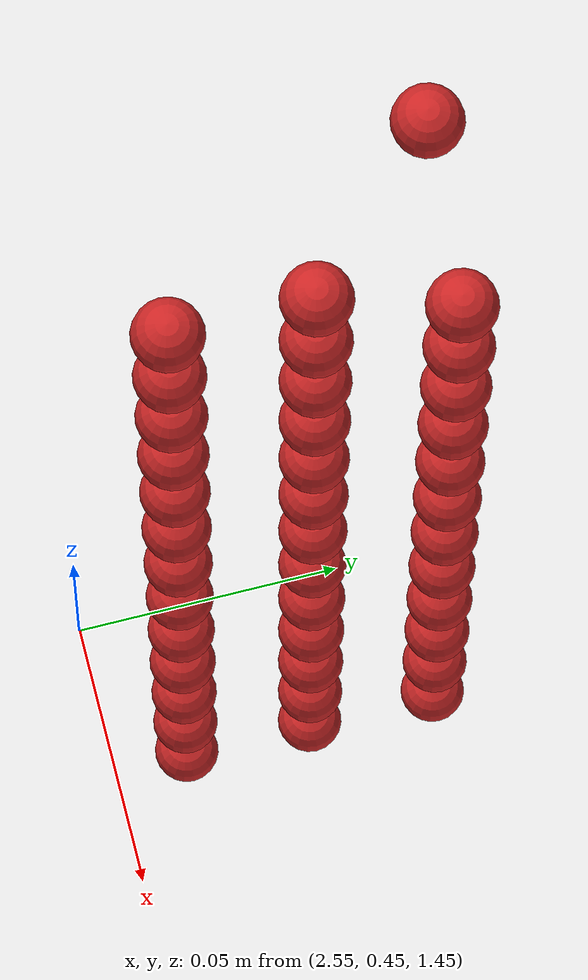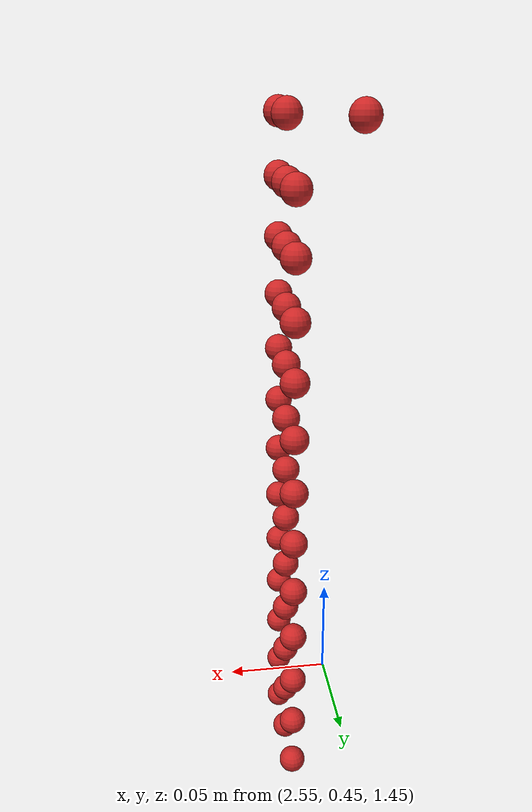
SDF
<sdf version="1.4">
 <world name="default">
  <model name="ground_plane">
   <static>1</static>
   <link name="link">
    <collision name="collision">
     <geometry><plane><normal>0 0 1</normal><size>100 100</size></plane></geometry>
     <surface><friction><ode><mu>100</mu><mu2>50</mu2></ode></friction></surface>
    </collision>
    <visual name="visual">
     <cast_shadows>0</cast_shadows>
     <geometry><plane><normal>0 0 1</normal><size>100 100</size></plane></geometry>
     <material>
      <script><uri>file://media/materials/scripts/gazebo.material</uri><name>Gazebo/Grey</name></script>
     </material>
    </visual>
    <velocity_decay><linear>0</linear><angular>0</angular></velocity_decay>
   </link>
  </model>
  <model name="sphere1">
   <pose>1.288140 0.232149 0.722288 0 0 0</pose>
   <link name="link">
    <pose>1.288140 0.232149 0.722288 0 0 0</pose>
    <inertial>
     <mass>0.001</mass>
     <inertia>
      <ixx>0.004</ixx>
      <ixy>0.000000</ixy>
      <ixz>0.000000</ixz>
      <iyy>0.004</iyy>
      <iyz>0.000000</iyz>
      <izz>0.004</izz>
     </inertia>
    </inertial>
    <collision name="collision">
     <surface>
      <contact><ode><kp>10000000000.000000</kp><kd>1</kd></ode></contact>
      <friction><ode><mu>0.01</mu><mu2>0.01</mu2></ode></friction>
     </surface>
     <geometry><sphere><radius>0.006</radius></sphere></geometry>
    </collision>
    <visual name="visual">
     <geometry><sphere><radius>0.006</radius></sphere></geometry>
     <material>
      <script><uri>file://media/materials/scripts/gazebo.material</uri><name>Gazebo/Red</name></script>
     </material>
    </visual>
   </link>
  </model>
  <model name="sphere4">
   <pose>1.288140 0.244149 0.722288 0 0 0</pose>
   <link name="link">
    <pose>1.288140 0.244149 0.722288 0 0 0</pose>
    <inertial>
     <mass>0.001</mass>
     <inertia>
      <ixx>0.004</ixx>
      <ixy>0.000000</ixy>
      <ixz>0.000000</ixz>
      <iyy>0.004</iyy>
      <iyz>0.000000</iyz>
      <izz>0.004</izz>
     </inertia>
    </inertial>
    <collision name="collision">
     <surface>
      <contact><ode><kp>10000000000.000000</kp><kd>1</kd></ode></contact>
      <friction><ode><mu>0.01</mu><mu2>0.01</mu2></ode></friction>
     </surface>
     <geometry><sphere><radius>0.006</radius></sphere></geometry>
    </collision>
    <visual name="visual">
     <geometry><sphere><radius>0.006</radius></sphere></geometry>
     <material>
      <script><uri>file://media/materials/scripts/gazebo.material</uri><name>Gazebo/Red</name></script>
     </material>
    </visual>
   </link>
  </model>
  <model name="sphere7">
   <pose>1.288140 0.256149 0.722288 0 0 0</pose>
   <link name="link">
    <pose>1.288140 0.256149 0.722288 0 0 0</pose>
    <inertial>
     <mass>0.001</mass>
     <inertia>
      <ixx>0.004</ixx>
      <ixy>0.000000</ixy>
      <ixz>0.000000</ixz>
      <iyy>0.004</iyy>
      <iyz>0.000000</iyz>
      <izz>0.004</izz>
     </inertia>
    </inertial>
    <collision name="collision">
     <surface>
      <contact><ode><kp>10000000000.000000</kp><kd>1</kd></ode></contact>
      <friction><ode><mu>0.01</mu><mu2>0.01</mu2></ode></friction>
     </surface>
     <geometry><sphere><radius>0.006</radius></sphere></geometry>
    </collision>
    <visual name="visual">
     <geometry><sphere><radius>0.006</radius></sphere></geometry>
     <material>
      <script><uri>file://media/materials/scripts/gazebo.material</uri><name>Gazebo/Red</name></script>
     </material>
    </visual>
   </link>
  </model>
  <model name="sphere10">
   <pose>1.288140 0.232149 0.734288 0 0 0</pose>
   <link name="link">
    <pose>1.288140 0.232149 0.734288 0 0 0</pose>
    <inertial>
     <mass>0.001</mass>
     <inertia>
      <ixx>0.004</ixx>
      <ixy>0.000000</ixy>
      <ixz>0.000000</ixz>
      <iyy>0.004</iyy>
      <iyz>0.000000</iyz>
      <izz>0.004</izz>
     </inertia>
    </inertial>
    <collision name="collision">
     <surface>
      <contact><ode><kp>10000000000.000000</kp><kd>1</kd></ode></contact>
      <friction><ode><mu>0.01</mu><mu2>0.01</mu2></ode></friction>
     </surface>
     <geometry><sphere><radius>0.006</radius></sphere></geometry>
    </collision>
    <visual name="visual">
     <geometry><sphere><radius>0.006</radius></sphere></geometry>
     <material>
      <script><uri>file://media/materials/scripts/gazebo.material</uri><name>Gazebo/Red</name></script>
     </material>
    </visual>
   </link>
  </model>
  <model name="sphere13">
   <pose>1.288140 0.244149 0.734288 0 0 0</pose>
   <link name="link">
    <pose>1.288140 0.244149 0.734288 0 0 0</pose>
    <inertial>
     <mass>0.001</mass>
     <inertia>
      <ixx>0.004</ixx>
      <ixy>0.000000</ixy>
      <ixz>0.000000</ixz>
      <iyy>0.004</iyy>
      <iyz>0.000000</iyz>
      <izz>0.004</izz>
     </inertia>
    </inertial>
    <collision name="collision">
     <surface>
      <contact><ode><kp>10000000000.000000</kp><kd>1</kd></ode></contact>
      <friction><ode><mu>0.01</mu><mu2>0.01</mu2></ode></friction>
     </surface>
     <geometry><sphere><radius>0.006</radius></sphere></geometry>
    </collision>
    <visual name="visual">
     <geometry><sphere><radius>0.006</radius></sphere></geometry>
     <material>
      <script><uri>file://media/materials/scripts/gazebo.material</uri><name>Gazebo/Red</name></script>
     </material>
    </visual>
   </link>
  </model>
  <model name="sphere16">
   <pose>1.288140 0.256149 0.734288 0 0 0</pose>
   <link name="link">
    <pose>1.288140 0.256149 0.734288 0 0 0</pose>
    <inertial>
     <mass>0.001</mass>
     <inertia>
      <ixx>0.004</ixx>
      <ixy>0.000000</ixy>
      <ixz>0.000000</ixz>
      <iyy>0.004</iyy>
      <iyz>0.000000</iyz>
      <izz>0.004</izz>
     </inertia>
    </inertial>
    <collision name="collision">
     <surface>
      <contact><ode><kp>10000000000.000000</kp><kd>1</kd></ode></contact>
      <friction><ode><mu>0.01</mu><mu2>0.01</mu2></ode></friction>
     </surface>
     <geometry><sphere><radius>0.006</radius></sphere></geometry>
    </collision>
    <visual name="visual">
     <geometry><sphere><radius>0.006</radius></sphere></geometry>
     <material>
      <script><uri>file://media/materials/scripts/gazebo.material</uri><name>Gazebo/Red</name></script>
     </material>
    </visual>
   </link>
  </model>
  <model name="sphere19">
   <pose>1.288140 0.232149 0.746288 0 0 0</pose>
   <link name="link">
    <pose>1.288140 0.232149 0.746288 0 0 0</pose>
    <inertial>
     <mass>0.001</mass>
     <inertia>
      <ixx>0.004</ixx>
      <ixy>0.000000</ixy>
      <ixz>0.000000</ixz>
      <iyy>0.004</iyy>
      <iyz>0.000000</iyz>
      <izz>0.004</izz>
     </inertia>
    </inertial>
    <collision name="collision">
     <surface>
      <contact><ode><kp>10000000000.000000</kp><kd>1</kd></ode></contact>
      <friction><ode><mu>0.01</mu><mu2>0.01</mu2></ode></friction>
     </surface>
     <geometry><sphere><radius>0.006</radius></sphere></geometry>
    </collision>
    <visual name="visual">
     <geometry><sphere><radius>0.006</radius></sphere></geometry>
     <material>
      <script><uri>file://media/materials/scripts/gazebo.material</uri><name>Gazebo/Red</name></script>
     </material>
    </visual>
   </link>
  </model>
  <model name="sphere22">
   <pose>1.288140 0.244149 0.746288 0 0 0</pose>
   <link name="link">
    <pose>1.288140 0.244149 0.746288 0 0 0</pose>
    <inertial>
     <mass>0.001</mass>
     <inertia>
      <ixx>0.004</ixx>
      <ixy>0.000000</ixy>
      <ixz>0.000000</ixz>
      <iyy>0.004</iyy>
      <iyz>0.000000</iyz>
      <izz>0.004</izz>
     </inertia>
    </inertial>
    <collision name="collision">
     <surface>
      <contact><ode><kp>10000000000.000000</kp><kd>1</kd></ode></contact>
      <friction><ode><mu>0.01</mu><mu2>0.01</mu2></ode></friction>
     </surface>
     <geometry><sphere><radius>0.006</radius></sphere></geometry>
    </collision>
    <visual name="visual">
     <geometry><sphere><radius>0.006</radius></sphere></geometry>
     <material>
      <script><uri>file://media/materials/scripts/gazebo.material</uri><name>Gazebo/Red</name></script>
     </material>
    </visual>
   </link>
  </model>
  <model name="sphere25">
   <pose>1.288140 0.256149 0.746288 0 0 0</pose>
   <link name="link">
    <pose>1.288140 0.256149 0.746288 0 0 0</pose>
    <inertial>
     <mass>0.001</mass>
     <inertia>
      <ixx>0.004</ixx>
      <ixy>0.000000</ixy>
      <ixz>0.000000</ixz>
      <iyy>0.004</iyy>
      <iyz>0.000000</iyz>
      <izz>0.004</izz>
     </inertia>
    </inertial>
    <collision name="collision">
     <surface>
      <contact><ode><kp>10000000000.000000</kp><kd>1</kd></ode></contact>
      <friction><ode><mu>0.01</mu><mu2>0.01</mu2></ode></friction>
     </surface>
     <geometry><sphere><radius>0.006</radius></sphere></geometry>
    </collision>
    <visual name="visual">
     <geometry><sphere><radius>0.006</radius></sphere></geometry>
     <material>
      <script><uri>file://media/materials/scripts/gazebo.material</uri><name>Gazebo/Red</name></script>
     </material>
    </visual>
   </link>
  </model>
  <model name="sphere28">
   <pose>1.288140 0.232149 0.758288 0 0 0</pose>
   <link name="link">
    <pose>1.288140 0.232149 0.758288 0 0 0</pose>
    <inertial>
     <mass>0.001</mass>
     <inertia>
      <ixx>0.004</ixx>
      <ixy>0.000000</ixy>
      <ixz>0.000000</ixz>
      <iyy>0.004</iyy>
      <iyz>0.000000</iyz>
      <izz>0.004</izz>
     </inertia>
    </inertial>
    <collision name="collision">
     <surface>
      <contact><ode><kp>10000000000.000000</kp><kd>1</kd></ode></contact>
      <friction><ode><mu>0.01</mu><mu2>0.01</mu2></ode></friction>
     </surface>
     <geometry><sphere><radius>0.006</radius></sphere></geometry>
    </collision>
    <visual name="visual">
     <geometry><sphere><radius>0.006</radius></sphere></geometry>
     <material>
      <script><uri>file://media/materials/scripts/gazebo.material</uri><name>Gazebo/Red</name></script>
     </material>
    </visual>
   </link>
  </model>
  <model name="sphere31">
   <pose>1.288140 0.244149 0.758288 0 0 0</pose>
   <link name="link">
    <pose>1.288140 0.244149 0.758288 0 0 0</pose>
    <inertial>
     <mass>0.001</mass>
     <inertia>
      <ixx>0.004</ixx>
      <ixy>0.000000</ixy>
      <ixz>0.000000</ixz>
      <iyy>0.004</iyy>
      <iyz>0.000000</iyz>
      <izz>0.004</izz>
     </inertia>
    </inertial>
    <collision name="collision">
     <surface>
      <contact><ode><kp>10000000000.000000</kp><kd>1</kd></ode></contact>
      <friction><ode><mu>0.01</mu><mu2>0.01</mu2></ode></friction>
     </surface>
     <geometry><sphere><radius>0.006</radius></sphere></geometry>
    </collision>
    <visual name="visual">
     <geometry><sphere><radius>0.006</radius></sphere></geometry>
     <material>
      <script><uri>file://media/materials/scripts/gazebo.material</uri><name>Gazebo/Red</name></script>
     </material>
    </visual>
   </link>
  </model>
  <model name="sphere34">
   <pose>1.288140 0.256149 0.758288 0 0 0</pose>
   <link name="link">
    <pose>1.288140 0.256149 0.758288 0 0 0</pose>
    <inertial>
     <mass>0.001</mass>
     <inertia>
      <ixx>0.004</ixx>
      <ixy>0.000000</ixy>
      <ixz>0.000000</ixz>
      <iyy>0.004</iyy>
      <iyz>0.000000</iyz>
      <izz>0.004</izz>
     </inertia>
    </inertial>
    <collision name="collision">
     <surface>
      <contact><ode><kp>10000000000.000000</kp><kd>1</kd></ode></contact>
      <friction><ode><mu>0.01</mu><mu2>0.01</mu2></ode></friction>
     </surface>
     <geometry><sphere><radius>0.006</radius></sphere></geometry>
    </collision>
    <visual name="visual">
     <geometry><sphere><radius>0.006</radius></sphere></geometry>
     <material>
      <script><uri>file://media/materials/scripts/gazebo.material</uri><name>Gazebo/Red</name></script>
     </material>
    </visual>
   </link>
  </model>
  <model name="sphere37">
   <pose>1.288140 0.232149 0.770288 0 0 0</pose>
   <link name="link">
    <pose>1.288140 0.232149 0.770288 0 0 0</pose>
    <inertial>
     <mass>0.001</mass>
     <inertia>
      <ixx>0.004</ixx>
      <ixy>0.000000</ixy>
      <ixz>0.000000</ixz>
      <iyy>0.004</iyy>
      <iyz>0.000000</iyz>
      <izz>0.004</izz>
     </inertia>
    </inertial>
    <collision name="collision">
     <surface>
      <contact><ode><kp>10000000000.000000</kp><kd>1</kd></ode></contact>
      <friction><ode><mu>0.01</mu><mu2>0.01</mu2></ode></friction>
     </surface>
     <geometry><sphere><radius>0.006</radius></sphere></geometry>
    </collision>
    <visual name="visual">
     <geometry><sphere><radius>0.006</radius></sphere></geometry>
     <material>
      <script><uri>file://media/materials/scripts/gazebo.material</uri><name>Gazebo/Red</name></script>
     </material>
    </visual>
   </link>
  </model>
  <model name="sphere40">
   <pose>1.288140 0.244149 0.770288 0 0 0</pose>
   <link name="link">
    <pose>1.288140 0.244149 0.770288 0 0 0</pose>
    <inertial>
     <mass>0.001</mass>
     <inertia>
      <ixx>0.004</ixx>
      <ixy>0.000000</ixy>
      <ixz>0.000000</ixz>
      <iyy>0.004</iyy>
      <iyz>0.000000</iyz>
      <izz>0.004</izz>
     </inertia>
    </inertial>
    <collision name="collision">
     <surface>
      <contact><ode><kp>10000000000.000000</kp><kd>1</kd></ode></contact>
      <friction><ode><mu>0.01</mu><mu2>0.01</mu2></ode></friction>
     </surface>
     <geometry><sphere><radius>0.006</radius></sphere></geometry>
    </collision>
    <visual name="visual">
     <geometry><sphere><radius>0.006</radius></sphere></geometry>
     <material>
      <script><uri>file://media/materials/scripts/gazebo.material</uri><name>Gazebo/Red</name></script>
     </material>
    </visual>
   </link>
  </model>
  <model name="sphere43">
   <pose>1.288140 0.256149 0.770288 0 0 0</pose>
   <link name="link">
    <pose>1.288140 0.256149 0.770288 0 0 0</pose>
    <inertial>
     <mass>0.001</mass>
     <inertia>
      <ixx>0.004</ixx>
      <ixy>0.000000</ixy>
      <ixz>0.000000</ixz>
      <iyy>0.004</iyy>
      <iyz>0.000000</iyz>
      <izz>0.004</izz>
     </inertia>
    </inertial>
    <collision name="collision">
     <surface>
      <contact><ode><kp>10000000000.000000</kp><kd>1</kd></ode></contact>
      <friction><ode><mu>0.01</mu><mu2>0.01</mu2></ode></friction>
     </surface>
     <geometry><sphere><radius>0.006</radius></sphere></geometry>
    </collision>
    <visual name="visual">
     <geometry><sphere><radius>0.006</radius></sphere></geometry>
     <material>
      <script><uri>file://media/materials/scripts/gazebo.material</uri><name>Gazebo/Red</name></script>
     </material>
    </visual>
   </link>
  </model>
  <model name="sphere46">
   <pose>1.288140 0.232149 0.782288 0 0 0</pose>
   <link name="link">
    <pose>1.288140 0.232149 0.782288 0 0 0</pose>
    <inertial>
     <mass>0.001</mass>
     <inertia>
      <ixx>0.004</ixx>
      <ixy>0.000000</ixy>
      <ixz>0.000000</ixz>
      <iyy>0.004</iyy>
      <iyz>0.000000</iyz>
      <izz>0.004</izz>
     </inertia>
    </inertial>
    <collision name="collision">
     <surface>
      <contact><ode><kp>10000000000.000000</kp><kd>1</kd></ode></contact>
      <friction><ode><mu>0.01</mu><mu2>0.01</mu2></ode></friction>
     </surface>
     <geometry><sphere><radius>0.006</radius></sphere></geometry>
    </collision>
    <visual name="visual">
     <geometry><sphere><radius>0.006</radius></sphere></geometry>
     <material>
      <script><uri>file://media/materials/scripts/gazebo.material</uri><name>Gazebo/Red</name></script>
     </material>
    </visual>
   </link>
  </model>
  <model name="sphere49">
   <pose>1.288140 0.244149 0.782288 0 0 0</pose>
   <link name="link">
    <pose>1.288140 0.244149 0.782288 0 0 0</pose>
    <inertial>
     <mass>0.001</mass>
     <inertia>
      <ixx>0.004</ixx>
      <ixy>0.000000</ixy>
      <ixz>0.000000</ixz>
      <iyy>0.004</iyy>
      <iyz>0.000000</iyz>
      <izz>0.004</izz>
     </inertia>
    </inertial>
    <collision name="collision">
     <surface>
      <contact><ode><kp>10000000000.000000</kp><kd>1</kd></ode></contact>
      <friction><ode><mu>0.01</mu><mu2>0.01</mu2></ode></friction>
     </surface>
     <geometry><sphere><radius>0.006</radius></sphere></geometry>
    </collision>
    <visual name="visual">
     <geometry><sphere><radius>0.006</radius></sphere></geometry>
     <material>
      <script><uri>file://media/materials/scripts/gazebo.material</uri><name>Gazebo/Red</name></script>
     </material>
    </visual>
   </link>
  </model>
  <model name="sphere52">
   <pose>1.288140 0.256149 0.782288 0 0 0</pose>
   <link name="link">
    <pose>1.288140 0.256149 0.782288 0 0 0</pose>
    <inertial>
     <mass>0.001</mass>
     <inertia>
      <ixx>0.004</ixx>
      <ixy>0.000000</ixy>
      <ixz>0.000000</ixz>
      <iyy>0.004</iyy>
      <iyz>0.000000</iyz>
      <izz>0.004</izz>
     </inertia>
    </inertial>
    <collision name="collision">
     <surface>
      <contact><ode><kp>10000000000.000000</kp><kd>1</kd></ode></contact>
      <friction><ode><mu>0.01</mu><mu2>0.01</mu2></ode></friction>
     </surface>
     <geometry><sphere><radius>0.006</radius></sphere></geometry>
    </collision>
    <visual name="visual">
     <geometry><sphere><radius>0.006</radius></sphere></geometry>
     <material>
      <script><uri>file://media/materials/scripts/gazebo.material</uri><name>Gazebo/Red</name></script>
     </material>
    </visual>
   </link>
  </model>
  <model name="sphere55">
   <pose>1.288140 0.232149 0.794288 0 0 0</pose>
   <link name="link">
    <pose>1.288140 0.232149 0.794288 0 0 0</pose>
    <inertial>
     <mass>0.001</mass>
     <inertia>
      <ixx>0.004</ixx>
      <ixy>0.000000</ixy>
      <ixz>0.000000</ixz>
      <iyy>0.004</iyy>
      <iyz>0.000000</iyz>
      <izz>0.004</izz>
     </inertia>
    </inertial>
    <collision name="collision">
     <surface>
      <contact><ode><kp>10000000000.000000</kp><kd>1</kd></ode></contact>
      <friction><ode><mu>0.01</mu><mu2>0.01</mu2></ode></friction>
     </surface>
     <geometry><sphere><radius>0.006</radius></sphere></geometry>
    </collision>
    <visual name="visual">
     <geometry><sphere><radius>0.006</radius></sphere></geometry>
     <material>
      <script><uri>file://media/materials/scripts/gazebo.material</uri><name>Gazebo/Red</name></script>
     </material>
    </visual>
   </link>
  </model>
  <model name="sphere58">
   <pose>1.288140 0.244149 0.794288 0 0 0</pose>
   <link name="link">
    <pose>1.288140 0.244149 0.794288 0 0 0</pose>
    <inertial>
     <mass>0.001</mass>
     <inertia>
      <ixx>0.004</ixx>
      <ixy>0.000000</ixy>
      <ixz>0.000000</ixz>
      <iyy>0.004</iyy>
      <iyz>0.000000</iyz>
      <izz>0.004</izz>
     </inertia>
    </inertial>
    <collision name="collision">
     <surface>
      <contact><ode><kp>10000000000.000000</kp><kd>1</kd></ode></contact>
      <friction><ode><mu>0.01</mu><mu2>0.01</mu2></ode></friction>
     </surface>
     <geometry><sphere><radius>0.006</radius></sphere></geometry>
    </collision>
    <visual name="visual">
     <geometry><sphere><radius>0.006</radius></sphere></geometry>
     <material>
      <script><uri>file://media/materials/scripts/gazebo.material</uri><name>Gazebo/Red</name></script>
     </material>
    </visual>
   </link>
  </model>
  <model name="sphere61">
   <pose>1.288140 0.256149 0.794288 0 0 0</pose>
   <link name="link">
    <pose>1.288140 0.256149 0.794288 0 0 0</pose>
    <inertial>
     <mass>0.001</mass>
     <inertia>
      <ixx>0.004</ixx>
      <ixy>0.000000</ixy>
      <ixz>0.000000</ixz>
      <iyy>0.004</iyy>
      <iyz>0.000000</iyz>
      <izz>0.004</izz>
     </inertia>
    </inertial>
    <collision name="collision">
     <surface>
      <contact><ode><kp>10000000000.000000</kp><kd>1</kd></ode></contact>
      <friction><ode><mu>0.01</mu><mu2>0.01</mu2></ode></friction>
     </surface>
     <geometry><sphere><radius>0.006</radius></sphere></geometry>
    </collision>
    <visual name="visual">
     <geometry><sphere><radius>0.006</radius></sphere></geometry>
     <material>
      <script><uri>file://media/materials/scripts/gazebo.material</uri><name>Gazebo/Red</name></script>
     </material>
    </visual>
   </link>
  </model>
  <model name="sphere64">
   <pose>1.288140 0.232149 0.806288 0 0 0</pose>
   <link name="link">
    <pose>1.288140 0.232149 0.806288 0 0 0</pose>
    <inertial>
     <mass>0.001</mass>
     <inertia>
      <ixx>0.004</ixx>
      <ixy>0.000000</ixy>
      <ixz>0.000000</ixz>
      <iyy>0.004</iyy>
      <iyz>0.000000</iyz>
      <izz>0.004</izz>
     </inertia>
    </inertial>
    <collision name="collision">
     <surface>
      <contact><ode><kp>10000000000.000000</kp><kd>1</kd></ode></contact>
      <friction><ode><mu>0.01</mu><mu2>0.01</mu2></ode></friction>
     </surface>
     <geometry><sphere><radius>0.006</radius></sphere></geometry>
    </collision>
    <visual name="visual">
     <geometry><sphere><radius>0.006</radius></sphere></geometry>
     <material>
      <script><uri>file://media/materials/scripts/gazebo.material</uri><name>Gazebo/Red</name></script>
     </material>
    </visual>
   </link>
  </model>
  <model name="sphere67">
   <pose>1.288140 0.244149 0.806288 0 0 0</pose>
   <link name="link">
    <pose>1.288140 0.244149 0.806288 0 0 0</pose>
    <inertial>
     <mass>0.001</mass>
     <inertia>
      <ixx>0.004</ixx>
      <ixy>0.000000</ixy>
      <ixz>0.000000</ixz>
      <iyy>0.004</iyy>
      <iyz>0.000000</iyz>
      <izz>0.004</izz>
     </inertia>
    </inertial>
    <collision name="collision">
     <surface>
      <contact><ode><kp>10000000000.000000</kp><kd>1</kd></ode></contact>
      <friction><ode><mu>0.01</mu><mu2>0.01</mu2></ode></friction>
     </surface>
     <geometry><sphere><radius>0.006</radius></sphere></geometry>
    </collision>
    <visual name="visual">
     <geometry><sphere><radius>0.006</radius></sphere></geometry>
     <material>
      <script><uri>file://media/materials/scripts/gazebo.material</uri><name>Gazebo/Red</name></script>
     </material>
    </visual>
   </link>
  </model>
  <model name="sphere70">
   <pose>1.288140 0.256149 0.806288 0 0 0</pose>
   <link name="link">
    <pose>1.288140 0.256149 0.806288 0 0 0</pose>
    <inertial>
     <mass>0.001</mass>
     <inertia>
      <ixx>0.004</ixx>
      <ixy>0.000000</ixy>
      <ixz>0.000000</ixz>
      <iyy>0.004</iyy>
      <iyz>0.000000</iyz>
      <izz>0.004</izz>
     </inertia>
    </inertial>
    <collision name="collision">
     <surface>
      <contact><ode><kp>10000000000.000000</kp><kd>1</kd></ode></contact>
      <friction><ode><mu>0.01</mu><mu2>0.01</mu2></ode></friction>
     </surface>
     <geometry><sphere><radius>0.006</radius></sphere></geometry>
    </collision>
    <visual name="visual">
     <geometry><sphere><radius>0.006</radius></sphere></geometry>
     <material>
      <script><uri>file://media/materials/scripts/gazebo.material</uri><name>Gazebo/Red</name></script>
     </material>
    </visual>
   </link>
  </model>
  <model name="sphere73">
   <pose>1.288140 0.232149 0.818288 0 0 0</pose>
   <link name="link">
    <pose>1.288140 0.232149 0.818288 0 0 0</pose>
    <inertial>
     <mass>0.001</mass>
     <inertia>
      <ixx>0.004</ixx>
      <ixy>0.000000</ixy>
      <ixz>0.000000</ixz>
      <iyy>0.004</iyy>
      <iyz>0.000000</iyz>
      <izz>0.004</izz>
     </inertia>
    </inertial>
    <collision name="collision">
     <surface>
      <contact><ode><kp>10000000000.000000</kp><kd>1</kd></ode></contact>
      <friction><ode><mu>0.01</mu><mu2>0.01</mu2></ode></friction>
     </surface>
     <geometry><sphere><radius>0.006</radius></sphere></geometry>
    </collision>
    <visual name="visual">
     <geometry><sphere><radius>0.006</radius></sphere></geometry>
     <material>
      <script><uri>file://media/materials/scripts/gazebo.material</uri><name>Gazebo/Red</name></script>
     </material>
    </visual>
   </link>
  </model>
  <model name="sphere76">
   <pose>1.288140 0.244149 0.818288 0 0 0</pose>
   <link name="link">
    <pose>1.288140 0.244149 0.818288 0 0 0</pose>
    <inertial>
     <mass>0.001</mass>
     <inertia>
      <ixx>0.004</ixx>
      <ixy>0.000000</ixy>
      <ixz>0.000000</ixz>
      <iyy>0.004</iyy>
      <iyz>0.000000</iyz>
      <izz>0.004</izz>
     </inertia>
    </inertial>
    <collision name="collision">
     <surface>
      <contact><ode><kp>10000000000.000000</kp><kd>1</kd></ode></contact>
      <friction><ode><mu>0.01</mu><mu2>0.01</mu2></ode></friction>
     </surface>
     <geometry><sphere><radius>0.006</radius></sphere></geometry>
    </collision>
    <visual name="visual">
     <geometry><sphere><radius>0.006</radius></sphere></geometry>
     <material>
      <script><uri>file://media/materials/scripts/gazebo.material</uri><name>Gazebo/Red</name></script>
     </material>
    </visual>
   </link>
  </model>
  <model name="sphere79">
   <pose>1.288140 0.256149 0.818288 0 0 0</pose>
   <link name="link">
    <pose>1.288140 0.256149 0.818288 0 0 0</pose>
    <inertial>
     <mass>0.001</mass>
     <inertia>
      <ixx>0.004</ixx>
      <ixy>0.000000</ixy>
      <ixz>0.000000</ixz>
      <iyy>0.004</iyy>
      <iyz>0.000000</iyz>
      <izz>0.004</izz>
     </inertia>
    </inertial>
    <collision name="collision">
     <surface>
      <contact><ode><kp>10000000000.000000</kp><kd>1</kd></ode></contact>
      <friction><ode><mu>0.01</mu><mu2>0.01</mu2></ode></friction>
     </surface>
     <geometry><sphere><radius>0.006</radius></sphere></geometry>
    </collision>
    <visual name="visual">
     <geometry><sphere><radius>0.006</radius></sphere></geometry>
     <material>
      <script><uri>file://media/materials/scripts/gazebo.material</uri><name>Gazebo/Red</name></script>
     </material>
    </visual>
   </link>
  </model>
  <model name="sphere82">
   <pose>1.288140 0.232149 0.830288 0 0 0</pose>
   <link name="link">
    <pose>1.288140 0.232149 0.830288 0 0 0</pose>
    <inertial>
     <mass>0.001</mass>
     <inertia>
      <ixx>0.004</ixx>
      <ixy>0.000000</ixy>
      <ixz>0.000000</ixz>
      <iyy>0.004</iyy>
      <iyz>0.000000</iyz>
      <izz>0.004</izz>
     </inertia>
    </inertial>
    <collision name="collision">
     <surface>
      <contact><ode><kp>10000000000.000000</kp><kd>1</kd></ode></contact>
      <friction><ode><mu>0.01</mu><mu2>0.01</mu2></ode></friction>
     </surface>
     <geometry><sphere><radius>0.006</radius></sphere></geometry>
    </collision>
    <visual name="visual">
     <geometry><sphere><radius>0.006</radius></sphere></geometry>
     <material>
      <script><uri>file://media/materials/scripts/gazebo.material</uri><name>Gazebo/Red</name></script>
     </material>
    </visual>
   </link>
  </model>
  <model name="sphere85">
   <pose>1.288140 0.244149 0.830288 0 0 0</pose>
   <link name="link">
    <pose>1.288140 0.244149 0.830288 0 0 0</pose>
    <inertial>
     <mass>0.001</mass>
     <inertia>
      <ixx>0.004</ixx>
      <ixy>0.000000</ixy>
      <ixz>0.000000</ixz>
      <iyy>0.004</iyy>
      <iyz>0.000000</iyz>
      <izz>0.004</izz>
     </inertia>
    </inertial>
    <collision name="collision">
     <surface>
      <contact><ode><kp>10000000000.000000</kp><kd>1</kd></ode></contact>
      <friction><ode><mu>0.01</mu><mu2>0.01</mu2></ode></friction>
     </surface>
     <geometry><sphere><radius>0.006</radius></sphere></geometry>
    </collision>
    <visual name="visual">
     <geometry><sphere><radius>0.006</radius></sphere></geometry>
     <material>
      <script><uri>file://media/materials/scripts/gazebo.material</uri><name>Gazebo/Red</name></script>
     </material>
    </visual>
   </link>
  </model>
  <model name="sphere88">
   <pose>1.288140 0.256149 0.830288 0 0 0</pose>
   <link name="link">
    <pose>1.288140 0.256149 0.830288 0 0 0</pose>
    <inertial>
     <mass>0.001</mass>
     <inertia>
      <ixx>0.004</ixx>
      <ixy>0.000000</ixy>
      <ixz>0.000000</ixz>
      <iyy>0.004</iyy>
      <iyz>0.000000</iyz>
      <izz>0.004</izz>
     </inertia>
    </inertial>
    <collision name="collision">
     <surface>
      <contact><ode><kp>10000000000.000000</kp><kd>1</kd></ode></contact>
      <friction><ode><mu>0.01</mu><mu2>0.01</mu2></ode></friction>
     </surface>
     <geometry><sphere><radius>0.006</radius></sphere></geometry>
    </collision>
    <visual name="visual">
     <geometry><sphere><radius>0.006</radius></sphere></geometry>
     <material>
      <script><uri>file://media/materials/scripts/gazebo.material</uri><name>Gazebo/Red</name></script>
     </material>
    </visual>
   </link>
  </model>
  <model name="sphere91">
   <pose>1.288140 0.232149 0.842288 0 0 0</pose>
   <link name="link">
    <pose>1.288140 0.232149 0.842288 0 0 0</pose>
    <inertial>
     <mass>0.001</mass>
     <inertia>
      <ixx>0.004</ixx>
      <ixy>0.000000</ixy>
      <ixz>0.000000</ixz>
      <iyy>0.004</iyy>
      <iyz>0.000000</iyz>
      <izz>0.004</izz>
     </inertia>
    </inertial>
    <collision name="collision">
     <surface>
      <contact><ode><kp>10000000000.000000</kp><kd>1</kd></ode></contact>
      <friction><ode><mu>0.01</mu><mu2>0.01</mu2></ode></friction>
     </surface>
     <geometry><sphere><radius>0.006</radius></sphere></geometry>
    </collision>
    <visual name="visual">
     <geometry><sphere><radius>0.006</radius></sphere></geometry>
     <material>
      <script><uri>file://media/materials/scripts/gazebo.material</uri><name>Gazebo/Red</name></script>
     </material>
    </visual>
   </link>
  </model>
  <model name="sphere94">
   <pose>1.288140 0.244149 0.842288 0 0 0</pose>
   <link name="link">
    <pose>1.288140 0.244149 0.842288 0 0 0</pose>
    <inertial>
     <mass>0.001</mass>
     <inertia>
      <ixx>0.004</ixx>
      <ixy>0.000000</ixy>
      <ixz>0.000000</ixz>
      <iyy>0.004</iyy>
      <iyz>0.000000</iyz>
      <izz>0.004</izz>
     </inertia>
    </inertial>
    <collision name="collision">
     <surface>
      <contact><ode><kp>10000000000.000000</kp><kd>1</kd></ode></contact>
      <friction><ode><mu>0.01</mu><mu2>0.01</mu2></ode></friction>
     </surface>
     <geometry><sphere><radius>0.006</radius></sphere></geometry>
    </collision>
    <visual name="visual">
     <geometry><sphere><radius>0.006</radius></sphere></geometry>
     <material>
      <script><uri>file://media/materials/scripts/gazebo.material</uri><name>Gazebo/Red</name></script>
     </material>
    </visual>
   </link>
  </model>
  <model name="sphere97">
   <pose>1.288140 0.256149 0.842288 0 0 0</pose>
   <link name="link">
    <pose>1.288140 0.256149 0.842288 0 0 0</pose>
    <inertial>
     <mass>0.001</mass>
     <inertia>
      <ixx>0.004</ixx>
      <ixy>0.000000</ixy>
      <ixz>0.000000</ixz>
      <iyy>0.004</iyy>
      <iyz>0.000000</iyz>
      <izz>0.004</izz>
     </inertia>
    </inertial>
    <collision name="collision">
     <surface>
      <contact><ode><kp>10000000000.000000</kp><kd>1</kd></ode></contact>
      <friction><ode><mu>0.01</mu><mu2>0.01</mu2></ode></friction>
     </surface>
     <geometry><sphere><radius>0.006</radius></sphere></geometry>
    </collision>
    <visual name="visual">
     <geometry><sphere><radius>0.006</radius></sphere></geometry>
     <material>
      <script><uri>file://media/materials/scripts/gazebo.material</uri><name>Gazebo/Red</name></script>
     </material>
    </visual>
   </link>
  </model>
  <model name="sphere100">
   <pose>1.288140 0.232149 0.854288 0 0 0</pose>
   <link name="link">
    <pose>1.288140 0.232149 0.854288 0 0 0</pose>
    <inertial>
     <mass>0.001</mass>
     <inertia>
      <ixx>0.004</ixx>
      <ixy>0.000000</ixy>
      <ixz>0.000000</ixz>
      <iyy>0.004</iyy>
      <iyz>0.000000</iyz>
      <izz>0.004</izz>
     </inertia>
    </inertial>
    <collision name="collision">
     <surface>
      <contact><ode><kp>10000000000.000000</kp><kd>1</kd></ode></contact>
      <friction><ode><mu>0.01</mu><mu2>0.01</mu2></ode></friction>
     </surface>
     <geometry><sphere><radius>0.006</radius></sphere></geometry>
    </collision>
    <visual name="visual">
     <geometry><sphere><radius>0.006</radius></sphere></geometry>
     <material>
      <script><uri>file://media/materials/scripts/gazebo.material</uri><name>Gazebo/Red</name></script>
     </material>
    </visual>
   </link>
  </model>
  <model name="sphere103">
   <pose>1.288140 0.244149 0.854288 0 0 0</pose>
   <link name="link">
    <pose>1.288140 0.244149 0.854288 0 0 0</pose>
    <inertial>
     <mass>0.001</mass>
     <inertia>
      <ixx>0.004</ixx>
      <ixy>0.000000</ixy>
      <ixz>0.000000</ixz>
      <iyy>0.004</iyy>
      <iyz>0.000000</iyz>
      <izz>0.004</izz>
     </inertia>
    </inertial>
    <collision name="collision">
     <surface>
      <contact><ode><kp>10000000000.000000</kp><kd>1</kd></ode></contact>
      <friction><ode><mu>0.01</mu><mu2>0.01</mu2></ode></friction>
     </surface>
     <geometry><sphere><radius>0.006</radius></sphere></geometry>
    </collision>
    <visual name="visual">
     <geometry><sphere><radius>0.006</radius></sphere></geometry>
     <material>
      <script><uri>file://media/materials/scripts/gazebo.material</uri><name>Gazebo/Red</name></script>
     </material>
    </visual>
   </link>
  </model>
  <model name="sphere106">
   <pose>1.288140 0.256149 0.854288 0 0 0</pose>
   <link name="link">
    <pose>1.288140 0.256149 0.854288 0 0 0</pose>
    <inertial>
     <mass>0.001</mass>
     <inertia>
      <ixx>0.004</ixx>
      <ixy>0.000000</ixy>
      <ixz>0.000000</ixz>
      <iyy>0.004</iyy>
      <iyz>0.000000</iyz>
      <izz>0.004</izz>
     </inertia>
    </inertial>
    <collision name="collision">
     <surface>
      <contact><ode><kp>10000000000.000000</kp><kd>1</kd></ode></contact>
      <friction><ode><mu>0.01</mu><mu2>0.01</mu2></ode></friction>
     </surface>
     <geometry><sphere><radius>0.006</radius></sphere></geometry>
    </collision>
    <visual name="visual">
     <geometry><sphere><radius>0.006</radius></sphere></geometry>
     <material>
      <script><uri>file://media/materials/scripts/gazebo.material</uri><name>Gazebo/Red</name></script>
     </material>
    </visual>
   </link>
  </model>
  <model name="sphere109">
   <pose>1.288140 0.232149 0.866288 0 0 0</pose>
   <link name="link">
    <pose>1.288140 0.232149 0.866288 0 0 0</pose>
    <inertial>
     <mass>0.001</mass>
     <inertia>
      <ixx>0.004</ixx>
      <ixy>0.000000</ixy>
      <ixz>0.000000</ixz>
      <iyy>0.004</iyy>
      <iyz>0.000000</iyz>
      <izz>0.004</izz>
     </inertia>
    </inertial>
    <collision name="collision">
     <surface>
      <contact><ode><kp>10000000000.000000</kp><kd>1</kd></ode></contact>
      <friction><ode><mu>0.01</mu><mu2>0.01</mu2></ode></friction>
     </surface>
     <geometry><sphere><radius>0.006</radius></sphere></geometry>
    </collision>
    <visual name="visual">
     <geometry><sphere><radius>0.006</radius></sphere></geometry>
     <material>
      <script><uri>file://media/materials/scripts/gazebo.material</uri><name>Gazebo/Red</name></script>
     </material>
    </visual>
   </link>
  </model>
  <model name="sphere112">
   <pose>1.288140 0.244149 0.866288 0 0 0</pose>
   <link name="link">
    <pose>1.288140 0.244149 0.866288 0 0 0</pose>
    <inertial>
     <mass>0.001</mass>
     <inertia>
      <ixx>0.004</ixx>
      <ixy>0.000000</ixy>
      <ixz>0.000000</ixz>
      <iyy>0.004</iyy>
      <iyz>0.000000</iyz>
      <izz>0.004</izz>
     </inertia>
    </inertial>
    <collision name="collision">
     <surface>
      <contact><ode><kp>10000000000.000000</kp><kd>1</kd></ode></contact>
      <friction><ode><mu>0.01</mu><mu2>0.01</mu2></ode></friction>
     </surface>
     <geometry><sphere><radius>0.006</radius></sphere></geometry>
    </collision>
    <visual name="visual">
     <geometry><sphere><radius>0.006</radius></sphere></geometry>
     <material>
      <script><uri>file://media/materials/scripts/gazebo.material</uri><name>Gazebo/Red</name></script>
     </material>
    </visual>
   </link>
  </model>
  <model name="sphere114">
   <pose>1.276140 0.256149 0.866288 0 0 0</pose>
   <link name="link">
    <pose>1.276140 0.256149 0.866288 0 0 0</pose>
    <inertial>
     <mass>0.001</mass>
     <inertia>
      <ixx>0.004</ixx>
      <ixy>0.000000</ixy>
      <ixz>0.000000</ixz>
      <iyy>0.004</iyy>
      <iyz>0.000000</iyz>
      <izz>0.004</izz>
     </inertia>
    </inertial>
    <collision name="collision">
     <surface>
      <contact><ode><kp>10000000000.000000</kp><kd>1</kd></ode></contact>
      <friction><ode><mu>0.01</mu><mu2>0.01</mu2></ode></friction>
     </surface>
     <geometry><sphere><radius>0.006</radius></sphere></geometry>
    </collision>
    <visual name="visual">
     <geometry><sphere><radius>0.006</radius></sphere></geometry>
     <material>
      <script><uri>file://media/materials/scripts/gazebo.material</uri><name>Gazebo/Red</name></script>
     </material>
    </visual>
   </link>
  </model>
 </world>
</sdf>
